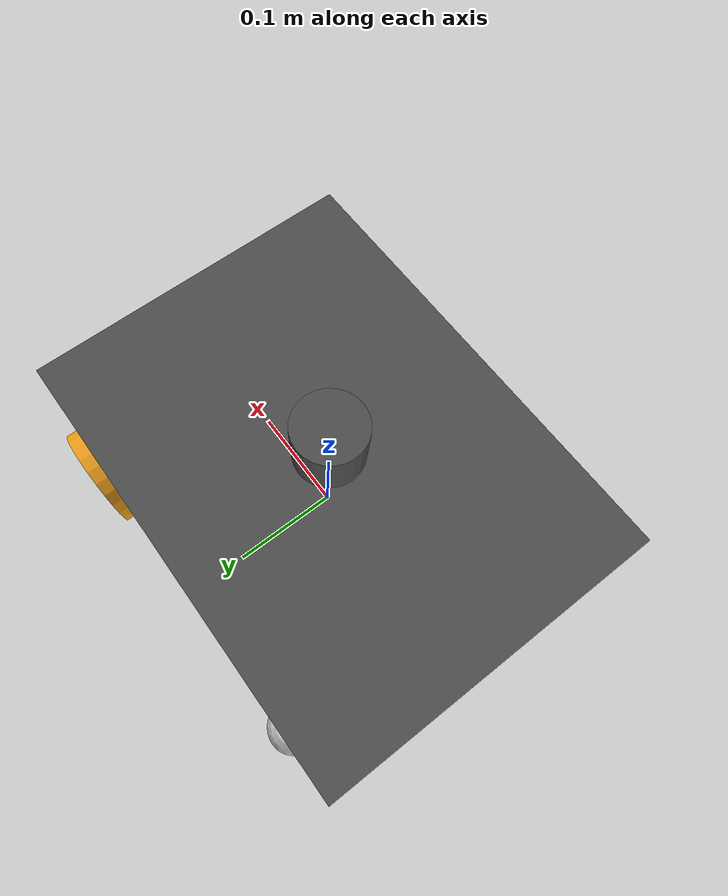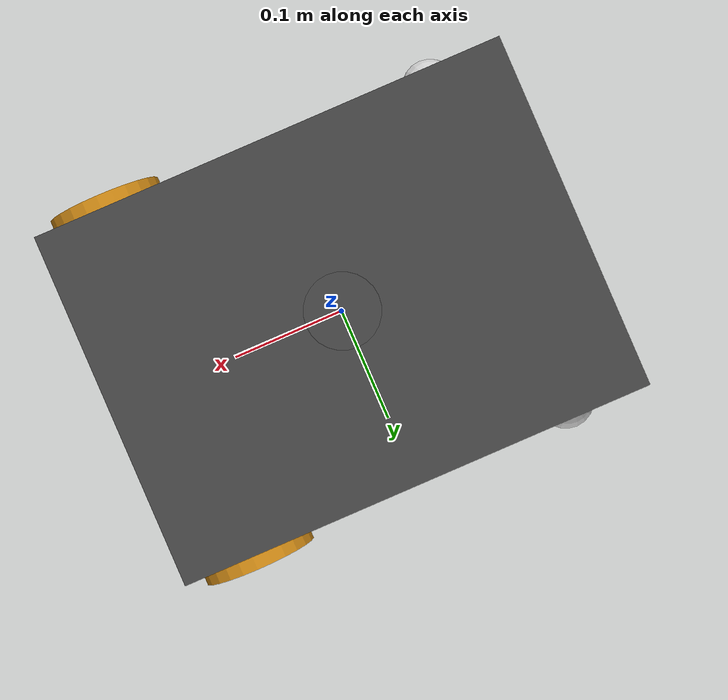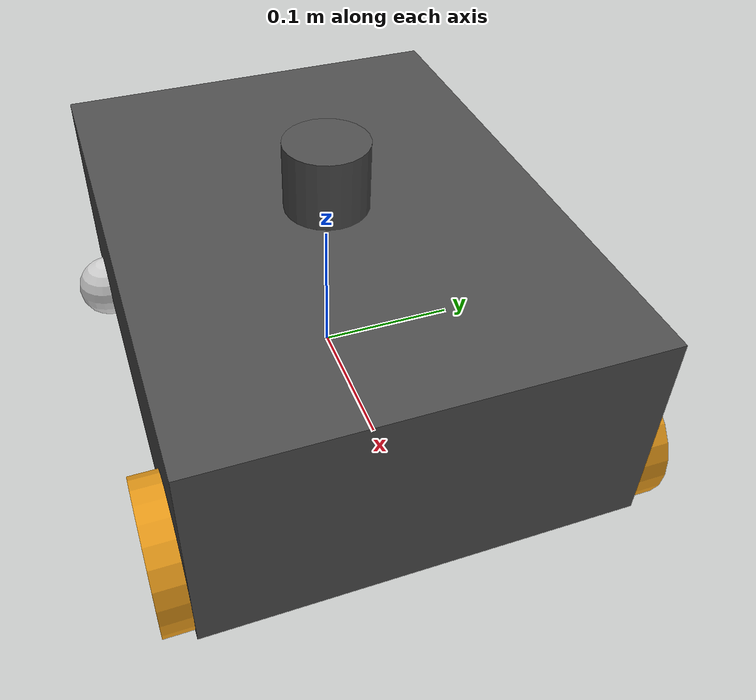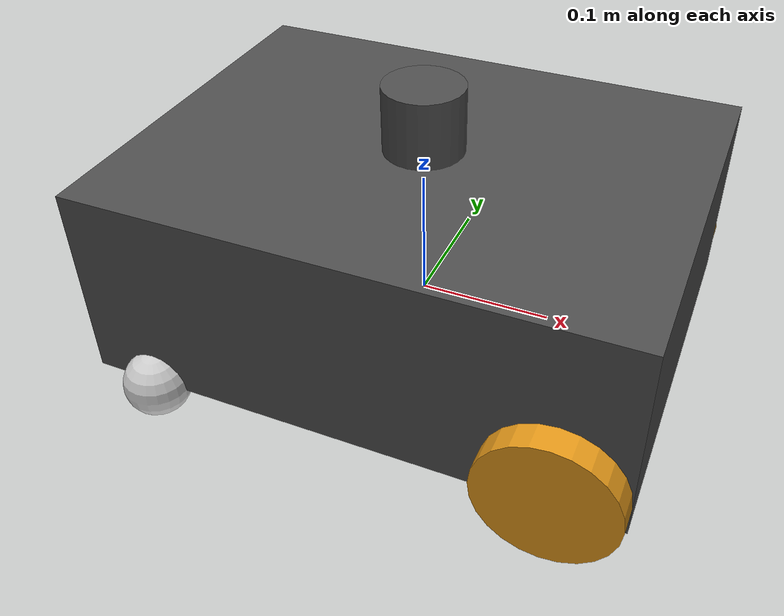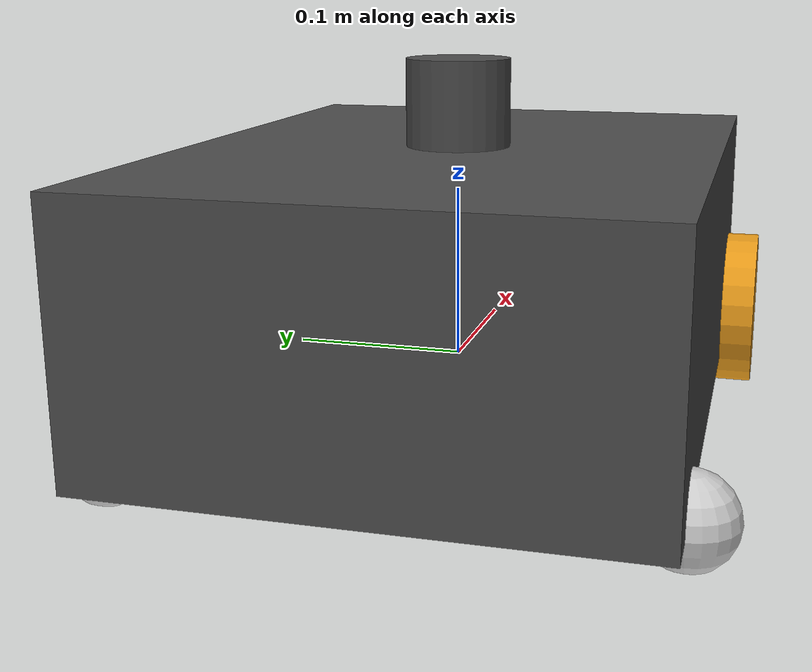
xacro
<?xml version="1.0"?>
<robot xmlns:xacro="http://www.ros.org/wiki/xacro" name="robot">

<!-- Materials (used for RViz display) -->
<material name="grey">
    <color rgba="0.3 0.3 0.3 1.0"/>
</material>
<material name="orange">
    <color rgba="0.9 0.6 0.1 1.0"/>
</material>
<material name="silver">
    <color rgba="0.8 0.8 0.8 1.0"/>
</material>

<!-- Properties:  -->
<xacro:property name="chassis_length" value="0.40"/>
<xacro:property name="chassis_width"  value="0.30"/>
<xacro:property name="chassis_height" value="0.15"/>
<xacro:property name="chassis_mass"   value="5.0"/>
<xacro:property name="wheel_radius" value="0.05"/>
<xacro:property name="wheel_width"  value="0.04"/>
<xacro:property name="wheel_mass"   value="0.3"/>
<xacro:property name="wheel_separation" value="0.30"/> <!-- left-right distance between wheel centers -->
<xacro:property name="wheelbase"        value="0.30"/> <!-- front-to-back distance between axles -->
<xacro:property name="caster_radius" value="0.025"/>
<xacro:property name="caster_mass"   value="0.1"/>
<xacro:property name="lidar_radius" value="0.03"/>
<xacro:property name="lidar_height" value="0.05"/>

<!-- Reusable inertia macros -->
  <xacro:macro name="box_inertia" params="mass x y z">
    <inertial>
      <mass value="${mass}"/>
      <inertia
        ixx="${(mass/12.0)*(y*y+z*z)}" ixy="0.0" ixz="0.0"
        iyy="${(mass/12.0)*(x*x+z*z)}" iyz="0.0"
        izz="${(mass/12.0)*(x*x+y*y)}"/>
    </inertial>
  </xacro:macro>
  <xacro:macro name="cylinder_inertia" params="mass r h">
    <inertial>
      <mass value="${mass}"/>
      <inertia
        ixx="${(mass/12.0)*(3*r*r+h*h)}" ixy="0.0" ixz="0.0"
        iyy="${(mass/12.0)*(3*r*r+h*h)}" iyz="0.0"
        izz="${(mass/2.0)*(r*r)}"/>
    </inertial>
  </xacro:macro>
  <!-- Solid sphere inertia: I = (2/5) * m * r^2 for all three axes -->
  <xacro:macro name="sphere_inertia" params="mass r">
    <inertial>
      <mass value="${mass}"/>
      <inertia
        ixx="${(2.0/5.0)*mass*r*r}" ixy="0.0" ixz="0.0"
        iyy="${(2.0/5.0)*mass*r*r}" iyz="0.0"
        izz="${(2.0/5.0)*mass*r*r}"/>
    </inertial>
  </xacro:macro>

  <!-- Base Footprint Link and Base Link-->
  <link name="base_footprint"/>
  <joint name="base_joint" type="fixed">
    <parent link="base_footprint"/>
    <child link="base_link"/>
    <origin xyz="0 0 ${wheel_radius}" rpy="0 0 0"/>
  </joint>
  <!-- Base Link is the chasis of the robot -->
  <link name="base_link">
    <visual>
      <origin xyz="0 0 0" rpy="0 0 0"/>
      <geometry>
        <box size="${chassis_length} ${chassis_width} ${chassis_height}"/>
      </geometry>
      <material name="grey"/>
    </visual>
    <collision>
      <origin xyz="0 0 0" rpy="0 0 0"/>
      <geometry>
        <box size="${chassis_length} ${chassis_width} ${chassis_height}"/>
      </geometry>
    </collision>
    <xacro:box_inertia mass="${chassis_mass}" x="${chassis_length}" y="${chassis_width}" z="${chassis_height}"/>
  </link>
  <gazebo reference="base_link">
    <material>Gazebo/Grey</material>
  </gazebo>

  <!-- Wheel macro                                                   -->
  <!-- Every wheel gets identical visual/collision/inertial/joint    -->
  <!-- structure. Whether a wheel is actually "driven" is decided    -->
  <!-- ONLY by whether its joint name is referenced by the Gazebo    -->
  <!-- diff_drive plugin below - rear wheels get a normal continuous-->
  <!-- joint with no plugin attached, so they spin freely under      -->
  <!-- rolling friction as the robot moves, exactly like an unpowered-->
  <!-- axle.                                                          -->
  <xacro:macro name="wheel" params="prefix x_pos y_pos">
    <link name="${prefix}_wheel_link">
      <visual>
        <origin xyz="0 0 0" rpy="${pi/2} 0 0"/>
        <geometry>
          <cylinder radius="${wheel_radius}" length="${wheel_width}"/>
        </geometry>
        <material name="orange"/>
      </visual>
      <collision>
        <origin xyz="0 0 0" rpy="${pi/2} 0 0"/>
        <geometry>
          <cylinder radius="${wheel_radius}" length="${wheel_width}"/>
        </geometry>
      </collision>
      <xacro:cylinder_inertia mass="${wheel_mass}" r="${wheel_radius}" h="${wheel_width}"/>
    </link>
    <joint name="${prefix}_wheel_joint" type="continuous">
      <parent link="base_link"/>
      <child link="${prefix}_wheel_link"/>
      <origin xyz="${x_pos} ${y_pos} -${wheel_radius}" rpy="0 0 0"/>
      <axis xyz="0 1 0"/>
      <dynamics damping="0.1" friction="0.0"/>
    </joint>
    <gazebo reference="${prefix}_wheel_link">
      <material>Gazebo/Black</material>
      <mu1>1.0</mu1>
      <mu2>1.0</mu2>
    </gazebo>
  </xacro:macro>
  <!-- FRONT wheels: these are the ones the diff_drive plugin actuates -->
  <xacro:wheel prefix="front_left"  x_pos="${wheelbase/2}"  y_pos="${wheel_separation/2}"/>
  <xacro:wheel prefix="front_right" x_pos="${wheelbase/2}"  y_pos="-${wheel_separation/2}"/>

  <!-- Rear caster macro                                             -->
  <!-- A caster is modeled as a simple sphere with very low friction -->
  <!-- and a FIXED joint (no motor, no rotation axis needed) a    -->
  <!-- sphere's shape lets it slide/scrub in any direction under low -->
  <!-- friction, which is what a real swivel caster does, without    -->
  <!-- needing to model the actual swivel mechanism.                 -->
  <xacro:macro name="caster" params="prefix x_pos y_pos">
    <link name="${prefix}_caster_link">
      <visual>
        <origin xyz="0 0 0" rpy="0 0 0"/>
        <geometry>
          <sphere radius="${caster_radius}"/>
        </geometry>
        <material name="silver"/>
      </visual>
      <collision>
        <origin xyz="0 0 0" rpy="0 0 0"/>
        <geometry>
          <sphere radius="${caster_radius}"/>
        </geometry>
      </collision>
      <xacro:sphere_inertia mass="${caster_mass}" r="${caster_radius}"/>
    </link>
    <joint name="${prefix}_caster_joint" type="fixed">
      <parent link="base_link"/>
      <child link="${prefix}_caster_link"/>
      <origin xyz="${x_pos} ${y_pos} ${-(wheel_radius+caster_radius)}" rpy="0 0 0"/>
    </joint>
    <gazebo reference="${prefix}_caster_link">
      <material>Gazebo/Grey</material>
      <mu1>0.01</mu1>
      <mu2>0.01</mu2>
    </gazebo>
  </xacro:macro>
  <!-- Rear casters: replace the old rear_left/rear_right wheels -->
  <xacro:caster prefix="rear_left"  x_pos="-${wheelbase/2}" y_pos="${wheel_separation/2}"/>
  <xacro:caster prefix="rear_right" x_pos="-${wheelbase/2}" y_pos="-${wheel_separation/2}"/>

  <!-- Lidar Link-->
  <link name="lidar_link">
    <visual>
      <geometry>
        <cylinder radius="${lidar_radius}" length="${lidar_height}"/>
      </geometry>
      <material name="grey"/>
    </visual>
    <collision>
      <geometry>
        <cylinder radius="${lidar_radius}" length="${lidar_height}"/>
      </geometry>
    </collision>
    <xacro:cylinder_inertia mass="0.1" r="${lidar_radius}" h="${lidar_height}"/>
  </link>

  <joint name="lidar_joint" type="fixed">
    <parent link="base_link"/>
    <child link="lidar_link"/>
    <origin xyz="0 0 ${chassis_height/2 + lidar_height/2}" rpy="0 0 0"/>
  </joint>

  <gazebo reference="lidar_link">
    <sensor name="lidar" type="gpu_lidar">
      <pose>0 0 0 0 0 0</pose>
      <topic>scan</topic>
      <update_rate>10</update_rate>
      <visualize>true</visualize>
      <always_on>true</always_on>
      <lidar>
        <scan>
          <horizontal>
            <samples>360</samples>
            <min_angle>-3.14159</min_angle>
            <max_angle>3.14159</max_angle>
          </horizontal>
        </scan>
        <range>
          <min>0.1</min>
          <max>12.0</max>
        </range>
      </lidar>
    </sensor>
  </gazebo>

  <!-- Gazebo plugins (differential drive, joint state publisher)   -->
  <!-- ignores them. The Sensors system is NOT loaded here - it's   -->
  <!-- already loaded once at the world level (see                  -->
  <!-- worlds/inventory_test.sdf). Loading it a second time here     -->
  <!-- spins up a second render thread that races the world's       -->
  <!-- render thread to initialize the same Ogre2 scene, crashing   -->
  <!-- gz-sim server with an Ogre::ItemIdentityException as soon as  -->
  <!-- a sensor tries to render.                                     -->
  <gazebo>
    <plugin filename="gz-sim-diff-drive-system" name="gz::sim::systems::DiffDrive">
      <left_joint>front_left_wheel_joint</left_joint>
      <right_joint>front_right_wheel_joint</right_joint>
      <wheel_separation>${wheel_separation}</wheel_separation>
      <wheel_radius>${wheel_radius}</wheel_radius>
      <odom_publish_frequency>30</odom_publish_frequency>
      <topic>cmd_vel</topic>
      <odom_topic>odom</odom_topic>
      <frame_id>odom</frame_id>
      <child_frame_id>base_footprint</child_frame_id>
    </plugin>
    <plugin filename="gz-sim-joint-state-publisher-system" name="gz::sim::systems::JointStatePublisher">
      <joint_name>front_left_wheel_joint</joint_name>
      <joint_name>front_right_wheel_joint</joint_name>
    </plugin>
  </gazebo>

</robot>
